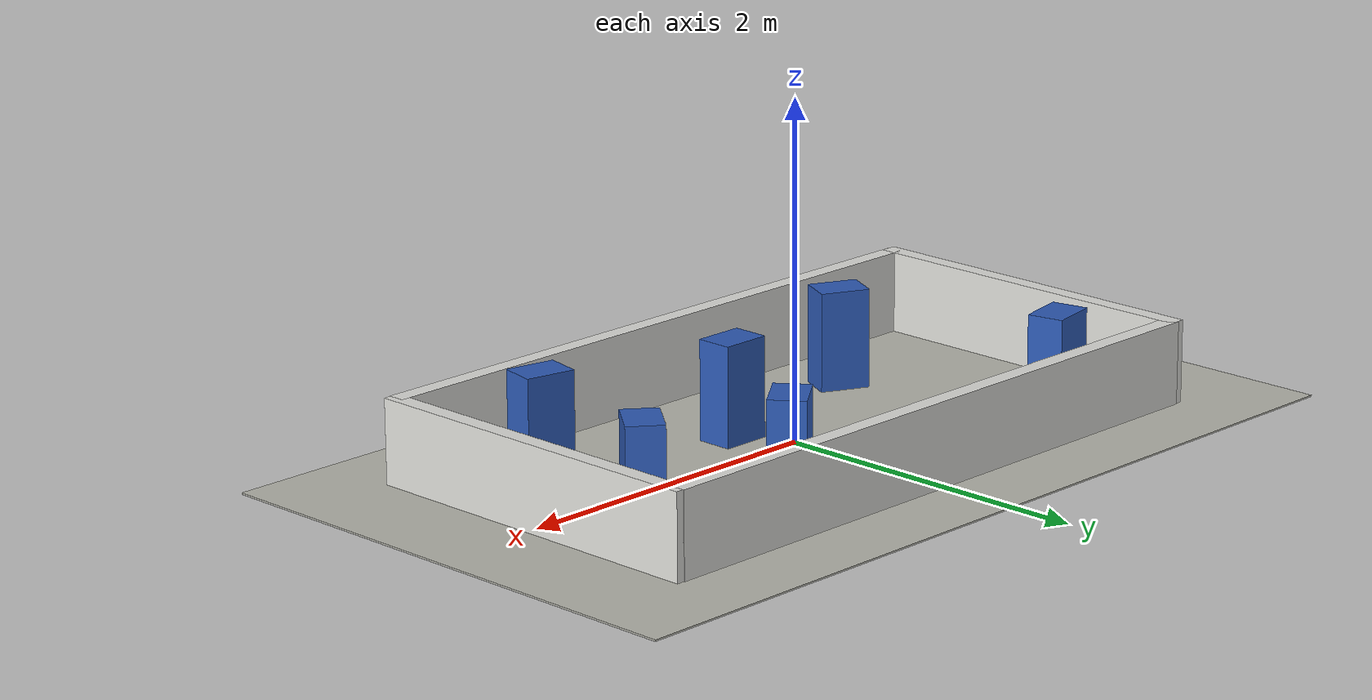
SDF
<?xml version="1.0" ?>
<sdf version="1.6">
  <world name="aufgabe03_arena_shadow">
    <physics name="default_physics" type="ode">
      <max_step_size>0.001</max_step_size>
      <real_time_factor>1.0</real_time_factor>
      <real_time_update_rate>1000</real_time_update_rate>
    </physics>

    <plugin name="gazebo_ros_init" filename="libgazebo_ros_init.so"/>
    <plugin name="gazebo_ros_factory" filename="libgazebo_ros_factory.so"/>

    <scene>
      <ambient>0.45 0.45 0.45 1</ambient>
      <background>0.78 0.82 0.86 1</background>
      <shadows>true</shadows>
    </scene>

    <light name="sun" type="directional">
      <pose>0 0 6 0 0 0</pose>
      <cast_shadows>true</cast_shadows>
      <diffuse>0.8 0.8 0.8 1</diffuse>
      <specular>0.2 0.2 0.2 1</specular>
      <attenuation>
        <range>1000</range>
        <constant>0.9</constant>
        <linear>0.01</linear>
        <quadratic>0.001</quadratic>
      </attenuation>
      <direction>-0.5 0.2 -1</direction>
    </light>

    <model name="arena_floor">
      <static>true</static>
      <pose>0 0 -0.005 0 0 0</pose>
      <link name="floor_link">
        <collision name="floor_collision">
          <geometry>
            <box>
              <size>5.40 3.20 0.01</size>
            </box>
          </geometry>
          <surface>
            <friction>
              <ode>
                <mu>1.0</mu>
                <mu2>1.0</mu2>
              </ode>
            </friction>
          </surface>
        </collision>
        <visual name="floor_visual">
          <geometry>
            <box>
              <size>5.40 3.20 0.01</size>
            </box>
          </geometry>
          <material>
            <ambient>0.72 0.72 0.68 1</ambient>
            <diffuse>0.72 0.72 0.68 1</diffuse>
          </material>
        </visual>
      </link>
    </model>

    <model name="arena_wall_north">
      <static>true</static>
      <pose>0 1.08 0.25 0 0 0</pose>
      <link name="wall_link">
        <collision name="collision">
          <geometry>
            <box>
              <size>4.05 0.10 0.50</size>
            </box>
          </geometry>
        </collision>
        <visual name="visual">
          <geometry>
            <box>
              <size>4.05 0.10 0.50</size>
            </box>
          </geometry>
          <material>
            <ambient>0.88 0.88 0.86 1</ambient>
            <diffuse>0.88 0.88 0.86 1</diffuse>
          </material>
        </visual>
      </link>
    </model>

    <model name="arena_wall_south">
      <static>true</static>
      <pose>0 -1.08 0.25 0 0 0</pose>
      <link name="wall_link">
        <collision name="collision">
          <geometry>
            <box>
              <size>4.05 0.10 0.50</size>
            </box>
          </geometry>
        </collision>
        <visual name="visual">
          <geometry>
            <box>
              <size>4.05 0.10 0.50</size>
            </box>
          </geometry>
          <material>
            <ambient>0.88 0.88 0.86 1</ambient>
            <diffuse>0.88 0.88 0.86 1</diffuse>
          </material>
        </visual>
      </link>
    </model>

    <model name="arena_wall_east">
      <static>true</static>
      <pose>2.02 0 0.25 0 0 0</pose>
      <link name="wall_link">
        <collision name="collision">
          <geometry>
            <box>
              <size>0.10 2.25 0.50</size>
            </box>
          </geometry>
        </collision>
        <visual name="visual">
          <geometry>
            <box>
              <size>0.10 2.25 0.50</size>
            </box>
          </geometry>
          <material>
            <ambient>0.88 0.88 0.86 1</ambient>
            <diffuse>0.88 0.88 0.86 1</diffuse>
          </material>
        </visual>
      </link>
    </model>

    <model name="arena_wall_west">
      <static>true</static>
      <pose>-2.02 0 0.25 0 0 0</pose>
      <link name="wall_link">
        <collision name="collision">
          <geometry>
            <box>
              <size>0.10 2.25 0.50</size>
            </box>
          </geometry>
        </collision>
        <visual name="visual">
          <geometry>
            <box>
              <size>0.10 2.25 0.50</size>
            </box>
          </geometry>
          <material>
            <ambient>0.88 0.88 0.86 1</ambient>
            <diffuse>0.88 0.88 0.86 1</diffuse>
          </material>
        </visual>
      </link>
    </model>

    <model name="stand_a">
      <static>true</static>
      <pose>-1.45 0.70 0.30 0 0 0.2</pose>
      <link name="stand_link">
        <collision name="collision">
          <geometry>
            <box>
              <size>0.30 0.22 0.60</size>
            </box>
          </geometry>
        </collision>
        <visual name="visual">
          <geometry>
            <box>
              <size>0.30 0.22 0.60</size>
            </box>
          </geometry>
          <material>
            <ambient>0.18 0.36 0.72 1</ambient>
            <diffuse>0.18 0.36 0.72 1</diffuse>
          </material>
        </visual>
      </link>
    </model>

    <model name="stand_b">
      <static>true</static>
      <pose>-0.95 -0.55 0.30 0 0 -0.45</pose>
      <link name="stand_link">
        <collision name="collision">
          <geometry>
            <box>
              <size>0.30 0.22 0.60</size>
            </box>
          </geometry>
        </collision>
        <visual name="visual">
          <geometry>
            <box>
              <size>0.30 0.22 0.60</size>
            </box>
          </geometry>
          <material>
            <ambient>0.18 0.36 0.72 1</ambient>
            <diffuse>0.18 0.36 0.72 1</diffuse>
          </material>
        </visual>
      </link>
    </model>

    <model name="stand_c">
      <static>true</static>
      <pose>0.20 -0.30 0.30 0 0 0.0</pose>
      <link name="stand_link">
        <collision name="collision">
          <geometry>
            <box>
              <size>0.30 0.22 0.60</size>
            </box>
          </geometry>
        </collision>
        <visual name="visual">
          <geometry>
            <box>
              <size>0.30 0.22 0.60</size>
            </box>
          </geometry>
          <material>
            <ambient>0.18 0.36 0.72 1</ambient>
            <diffuse>0.18 0.36 0.72 1</diffuse>
          </material>
        </visual>
      </link>
    </model>

    <model name="stand_d">
      <static>true</static>
      <pose>0.70 0.62 0.30 0 0 0.65</pose>
      <link name="stand_link">
        <collision name="collision">
          <geometry>
            <box>
              <size>0.30 0.22 0.60</size>
            </box>
          </geometry>
        </collision>
        <visual name="visual">
          <geometry>
            <box>
              <size>0.30 0.22 0.60</size>
            </box>
          </geometry>
          <material>
            <ambient>0.18 0.36 0.72 1</ambient>
            <diffuse>0.18 0.36 0.72 1</diffuse>
          </material>
        </visual>
      </link>
    </model>

    <model name="stand_e">
      <static>true</static>
      <pose>1.35 -0.65 0.30 0 0 -0.2</pose>
      <link name="stand_link">
        <collision name="collision">
          <geometry>
            <box>
              <size>0.30 0.22 0.60</size>
            </box>
          </geometry>
        </collision>
        <visual name="visual">
          <geometry>
            <box>
              <size>0.30 0.22 0.60</size>
            </box>
          </geometry>
          <material>
            <ambient>0.18 0.36 0.72 1</ambient>
            <diffuse>0.18 0.36 0.72 1</diffuse>
          </material>
        </visual>
      </link>
    </model>

    <model name="stand_f">
      <static>true</static>
      <pose>1.55 0.35 0.30 0 0 0.9</pose>
      <link name="stand_link">
        <collision name="collision">
          <geometry>
            <box>
              <size>0.30 0.22 0.60</size>
            </box>
          </geometry>
        </collision>
        <visual name="visual">
          <geometry>
            <box>
              <size>0.30 0.22 0.60</size>
            </box>
          </geometry>
          <material>
            <ambient>0.18 0.36 0.72 1</ambient>
            <diffuse>0.18 0.36 0.72 1</diffuse>
          </material>
        </visual>
      </link>
    </model>
  </world>
</sdf>
